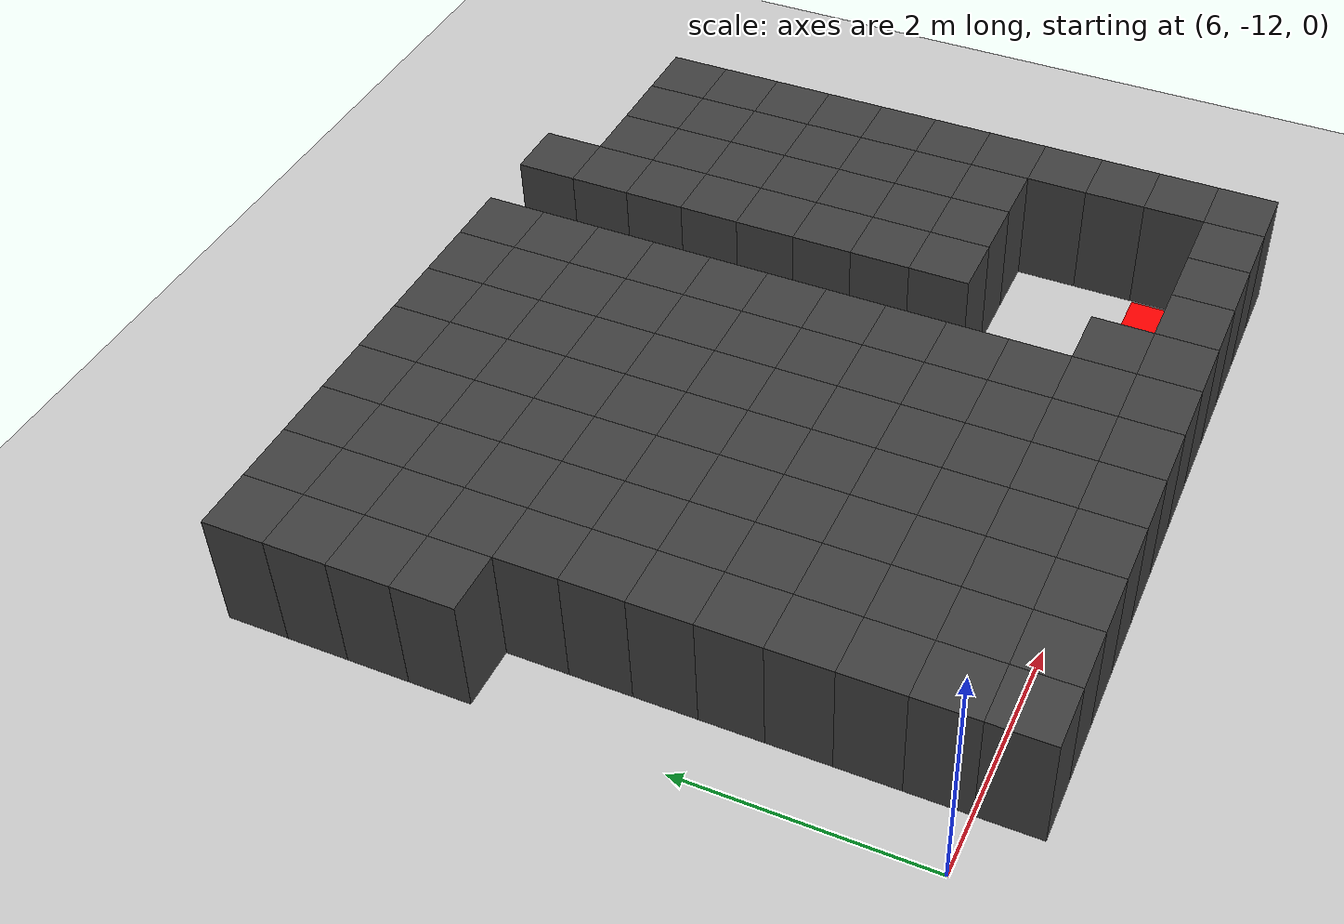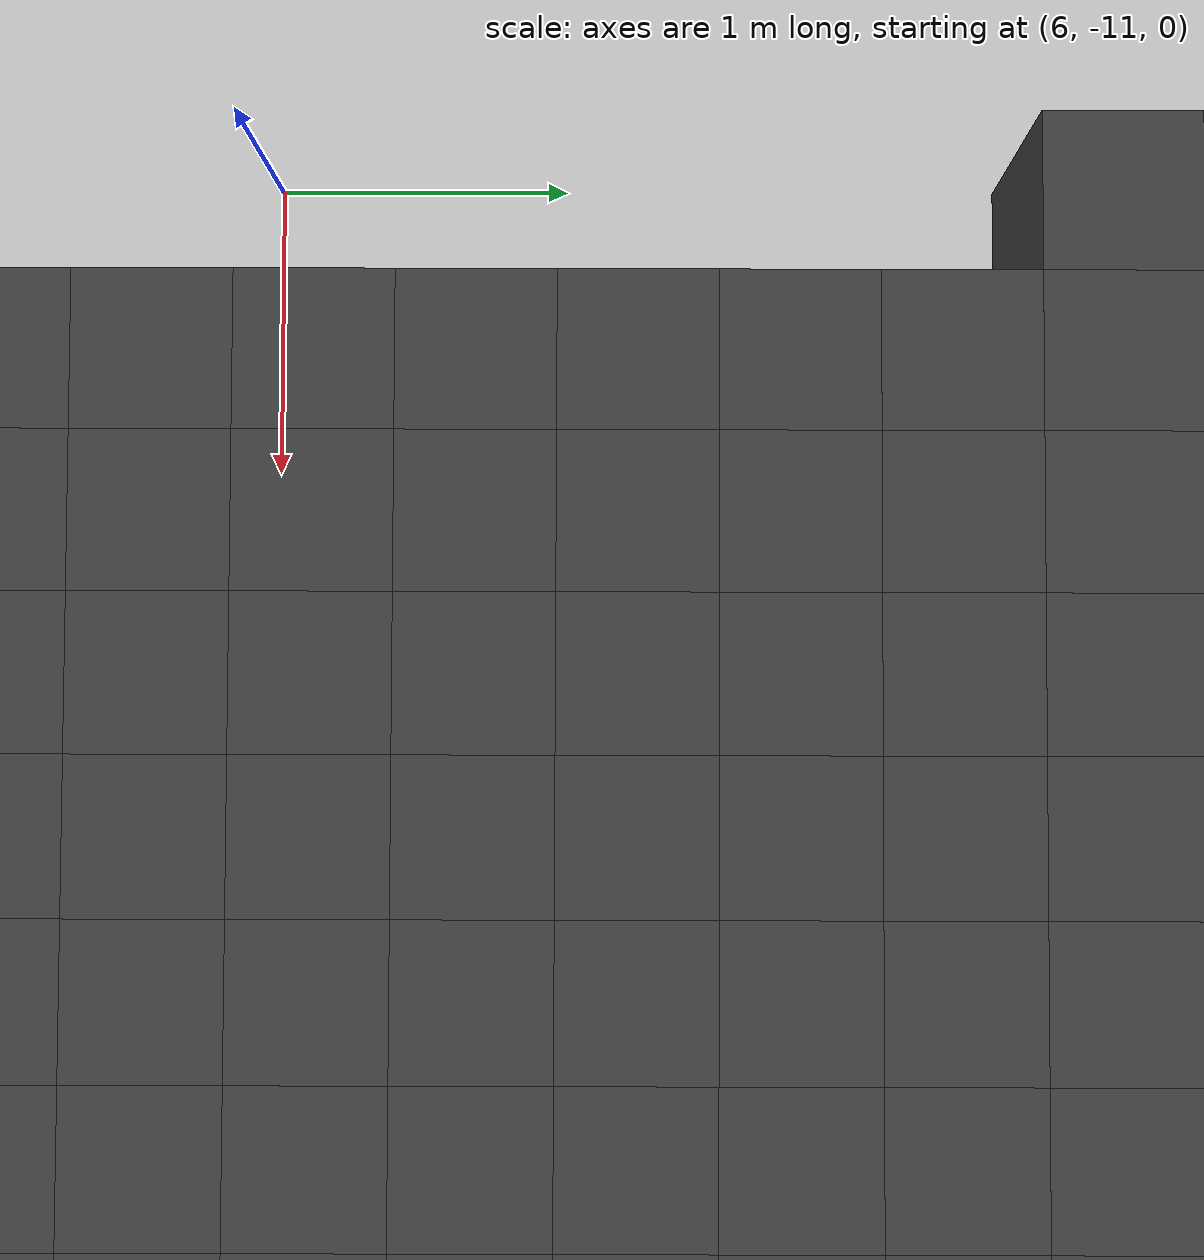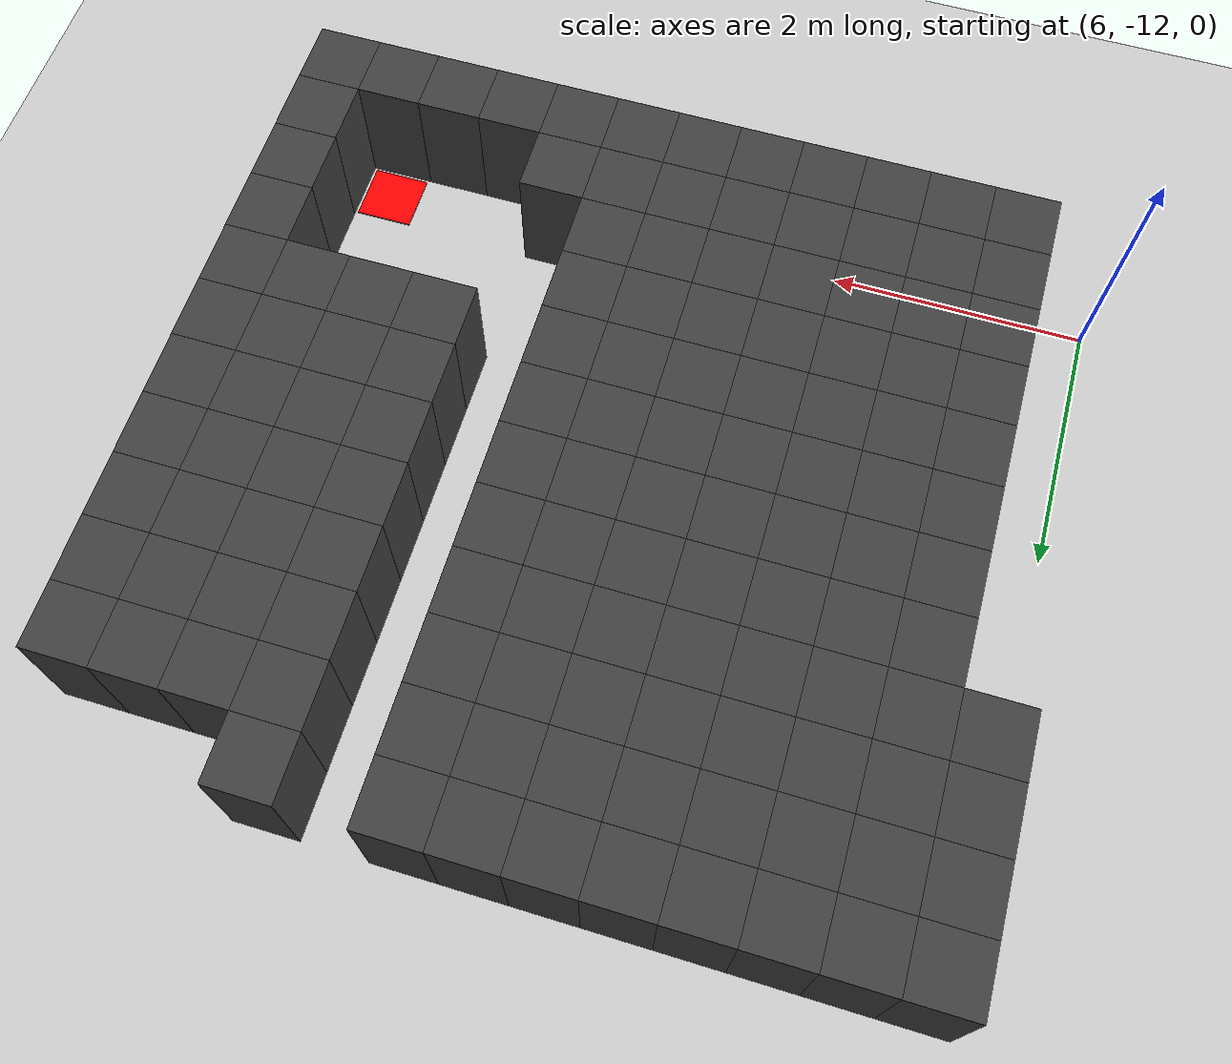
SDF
<sdf version="1.7">
 <world name="map_12356">
  <model name="ground_plane">
   <static>true</static>
   <link name="link">
    <collision name="collision">
     <geometry><plane><normal>0 0 1</normal><size>200 200</size></plane></geometry>
    </collision>
    <visual name="visual">
     <geometry><plane><normal>0 0 1</normal><size>200 200</size></plane></geometry>
     <material><ambient>0.8 0.8 0.8 1</ambient><diffuse>0.8 0.8 0.8 1</diffuse></material>
    </visual>
   </link>
  </model>
  <model name="maze_environment">
   <static>true</static>
   <link name="wall_1510">
    <pose>6.250 -6.750 0.500 0 0 0</pose>
    <collision name="col"><geometry><box><size>0.5 0.5 1.0</size></box></geometry></collision>
    <visual name="vis">
     <geometry><box><size>0.5 0.5 1.0</size></box></geometry>
     <material><ambient>0.15 0.15 0.15 1</ambient><diffuse>0.25 0.25 0.25 1</diffuse></material>
    </visual>
   </link>
   <link name="wall_1511">
    <pose>6.750 -6.750 0.500 0 0 0</pose>
    <collision name="col"><geometry><box><size>0.5 0.5 1.0</size></box></geometry></collision>
    <visual name="vis">
     <geometry><box><size>0.5 0.5 1.0</size></box></geometry>
     <material><ambient>0.15 0.15 0.15 1</ambient><diffuse>0.25 0.25 0.25 1</diffuse></material>
    </visual>
   </link>
   <link name="wall_1512">
    <pose>7.250 -6.750 0.500 0 0 0</pose>
    <collision name="col"><geometry><box><size>0.5 0.5 1.0</size></box></geometry></collision>
    <visual name="vis">
     <geometry><box><size>0.5 0.5 1.0</size></box></geometry>
     <material><ambient>0.15 0.15 0.15 1</ambient><diffuse>0.25 0.25 0.25 1</diffuse></material>
    </visual>
   </link>
   <link name="wall_1513">
    <pose>7.750 -6.750 0.500 0 0 0</pose>
    <collision name="col"><geometry><box><size>0.5 0.5 1.0</size></box></geometry></collision>
    <visual name="vis">
     <geometry><box><size>0.5 0.5 1.0</size></box></geometry>
     <material><ambient>0.15 0.15 0.15 1</ambient><diffuse>0.25 0.25 0.25 1</diffuse></material>
    </visual>
   </link>
   <link name="wall_1514">
    <pose>8.250 -6.750 0.500 0 0 0</pose>
    <collision name="col"><geometry><box><size>0.5 0.5 1.0</size></box></geometry></collision>
    <visual name="vis">
     <geometry><box><size>0.5 0.5 1.0</size></box></geometry>
     <material><ambient>0.15 0.15 0.15 1</ambient><diffuse>0.25 0.25 0.25 1</diffuse></material>
    </visual>
   </link>
   <link name="wall_1515">
    <pose>8.750 -6.750 0.500 0 0 0</pose>
    <collision name="col"><geometry><box><size>0.5 0.5 1.0</size></box></geometry></collision>
    <visual name="vis">
     <geometry><box><size>0.5 0.5 1.0</size></box></geometry>
     <material><ambient>0.15 0.15 0.15 1</ambient><diffuse>0.25 0.25 0.25 1</diffuse></material>
    </visual>
   </link>
   <link name="wall_1516">
    <pose>9.250 -6.750 0.500 0 0 0</pose>
    <collision name="col"><geometry><box><size>0.5 0.5 1.0</size></box></geometry></collision>
    <visual name="vis">
     <geometry><box><size>0.5 0.5 1.0</size></box></geometry>
     <material><ambient>0.15 0.15 0.15 1</ambient><diffuse>0.25 0.25 0.25 1</diffuse></material>
    </visual>
   </link>
   <link name="wall_1517">
    <pose>9.750 -6.750 0.500 0 0 0</pose>
    <collision name="col"><geometry><box><size>0.5 0.5 1.0</size></box></geometry></collision>
    <visual name="vis">
     <geometry><box><size>0.5 0.5 1.0</size></box></geometry>
     <material><ambient>0.15 0.15 0.15 1</ambient><diffuse>0.25 0.25 0.25 1</diffuse></material>
    </visual>
   </link>
   <link name="wall_1518">
    <pose>10.750 -6.750 0.500 0 0 0</pose>
    <collision name="col"><geometry><box><size>0.5 0.5 1.0</size></box></geometry></collision>
    <visual name="vis">
     <geometry><box><size>0.5 0.5 1.0</size></box></geometry>
     <material><ambient>0.15 0.15 0.15 1</ambient><diffuse>0.25 0.25 0.25 1</diffuse></material>
    </visual>
   </link>
   <link name="wall_1551">
    <pose>6.250 -7.250 0.500 0 0 0</pose>
    <collision name="col"><geometry><box><size>0.5 0.5 1.0</size></box></geometry></collision>
    <visual name="vis">
     <geometry><box><size>0.5 0.5 1.0</size></box></geometry>
     <material><ambient>0.15 0.15 0.15 1</ambient><diffuse>0.25 0.25 0.25 1</diffuse></material>
    </visual>
   </link>
   <link name="wall_1552">
    <pose>6.750 -7.250 0.500 0 0 0</pose>
    <collision name="col"><geometry><box><size>0.5 0.5 1.0</size></box></geometry></collision>
    <visual name="vis">
     <geometry><box><size>0.5 0.5 1.0</size></box></geometry>
     <material><ambient>0.15 0.15 0.15 1</ambient><diffuse>0.25 0.25 0.25 1</diffuse></material>
    </visual>
   </link>
   <link name="wall_1553">
    <pose>7.250 -7.250 0.500 0 0 0</pose>
    <collision name="col"><geometry><box><size>0.5 0.5 1.0</size></box></geometry></collision>
    <visual name="vis">
     <geometry><box><size>0.5 0.5 1.0</size></box></geometry>
     <material><ambient>0.15 0.15 0.15 1</ambient><diffuse>0.25 0.25 0.25 1</diffuse></material>
    </visual>
   </link>
   <link name="wall_1554">
    <pose>7.750 -7.250 0.500 0 0 0</pose>
    <collision name="col"><geometry><box><size>0.5 0.5 1.0</size></box></geometry></collision>
    <visual name="vis">
     <geometry><box><size>0.5 0.5 1.0</size></box></geometry>
     <material><ambient>0.15 0.15 0.15 1</ambient><diffuse>0.25 0.25 0.25 1</diffuse></material>
    </visual>
   </link>
   <link name="wall_1555">
    <pose>8.250 -7.250 0.500 0 0 0</pose>
    <collision name="col"><geometry><box><size>0.5 0.5 1.0</size></box></geometry></collision>
    <visual name="vis">
     <geometry><box><size>0.5 0.5 1.0</size></box></geometry>
     <material><ambient>0.15 0.15 0.15 1</ambient><diffuse>0.25 0.25 0.25 1</diffuse></material>
    </visual>
   </link>
   <link name="wall_1556">
    <pose>8.750 -7.250 0.500 0 0 0</pose>
    <collision name="col"><geometry><box><size>0.5 0.5 1.0</size></box></geometry></collision>
    <visual name="vis">
     <geometry><box><size>0.5 0.5 1.0</size></box></geometry>
     <material><ambient>0.15 0.15 0.15 1</ambient><diffuse>0.25 0.25 0.25 1</diffuse></material>
    </visual>
   </link>
   <link name="wall_1557">
    <pose>9.250 -7.250 0.500 0 0 0</pose>
    <collision name="col"><geometry><box><size>0.5 0.5 1.0</size></box></geometry></collision>
    <visual name="vis">
     <geometry><box><size>0.5 0.5 1.0</size></box></geometry>
     <material><ambient>0.15 0.15 0.15 1</ambient><diffuse>0.25 0.25 0.25 1</diffuse></material>
    </visual>
   </link>
   <link name="wall_1558">
    <pose>9.750 -7.250 0.500 0 0 0</pose>
    <collision name="col"><geometry><box><size>0.5 0.5 1.0</size></box></geometry></collision>
    <visual name="vis">
     <geometry><box><size>0.5 0.5 1.0</size></box></geometry>
     <material><ambient>0.15 0.15 0.15 1</ambient><diffuse>0.25 0.25 0.25 1</diffuse></material>
    </visual>
   </link>
   <link name="wall_1559">
    <pose>10.750 -7.250 0.500 0 0 0</pose>
    <collision name="col"><geometry><box><size>0.5 0.5 1.0</size></box></geometry></collision>
    <visual name="vis">
     <geometry><box><size>0.5 0.5 1.0</size></box></geometry>
     <material><ambient>0.15 0.15 0.15 1</ambient><diffuse>0.25 0.25 0.25 1</diffuse></material>
    </visual>
   </link>
   <link name="wall_1560">
    <pose>11.250 -7.250 0.500 0 0 0</pose>
    <collision name="col"><geometry><box><size>0.5 0.5 1.0</size></box></geometry></collision>
    <visual name="vis">
     <geometry><box><size>0.5 0.5 1.0</size></box></geometry>
     <material><ambient>0.15 0.15 0.15 1</ambient><diffuse>0.25 0.25 0.25 1</diffuse></material>
    </visual>
   </link>
   <link name="wall_1561">
    <pose>11.750 -7.250 0.500 0 0 0</pose>
    <collision name="col"><geometry><box><size>0.5 0.5 1.0</size></box></geometry></collision>
    <visual name="vis">
     <geometry><box><size>0.5 0.5 1.0</size></box></geometry>
     <material><ambient>0.15 0.15 0.15 1</ambient><diffuse>0.25 0.25 0.25 1</diffuse></material>
    </visual>
   </link>
   <link name="wall_1562">
    <pose>12.250 -7.250 0.500 0 0 0</pose>
    <collision name="col"><geometry><box><size>0.5 0.5 1.0</size></box></geometry></collision>
    <visual name="vis">
     <geometry><box><size>0.5 0.5 1.0</size></box></geometry>
     <material><ambient>0.15 0.15 0.15 1</ambient><diffuse>0.25 0.25 0.25 1</diffuse></material>
    </visual>
   </link>
   <link name="wall_1596">
    <pose>6.250 -7.750 0.500 0 0 0</pose>
    <collision name="col"><geometry><box><size>0.5 0.5 1.0</size></box></geometry></collision>
    <visual name="vis">
     <geometry><box><size>0.5 0.5 1.0</size></box></geometry>
     <material><ambient>0.15 0.15 0.15 1</ambient><diffuse>0.25 0.25 0.25 1</diffuse></material>
    </visual>
   </link>
   <link name="wall_1597">
    <pose>6.750 -7.750 0.500 0 0 0</pose>
    <collision name="col"><geometry><box><size>0.5 0.5 1.0</size></box></geometry></collision>
    <visual name="vis">
     <geometry><box><size>0.5 0.5 1.0</size></box></geometry>
     <material><ambient>0.15 0.15 0.15 1</ambient><diffuse>0.25 0.25 0.25 1</diffuse></material>
    </visual>
   </link>
   <link name="wall_1598">
    <pose>7.250 -7.750 0.500 0 0 0</pose>
    <collision name="col"><geometry><box><size>0.5 0.5 1.0</size></box></geometry></collision>
    <visual name="vis">
     <geometry><box><size>0.5 0.5 1.0</size></box></geometry>
     <material><ambient>0.15 0.15 0.15 1</ambient><diffuse>0.25 0.25 0.25 1</diffuse></material>
    </visual>
   </link>
   <link name="wall_1599">
    <pose>7.750 -7.750 0.500 0 0 0</pose>
    <collision name="col"><geometry><box><size>0.5 0.5 1.0</size></box></geometry></collision>
    <visual name="vis">
     <geometry><box><size>0.5 0.5 1.0</size></box></geometry>
     <material><ambient>0.15 0.15 0.15 1</ambient><diffuse>0.25 0.25 0.25 1</diffuse></material>
    </visual>
   </link>
   <link name="wall_1600">
    <pose>8.250 -7.750 0.500 0 0 0</pose>
    <collision name="col"><geometry><box><size>0.5 0.5 1.0</size></box></geometry></collision>
    <visual name="vis">
     <geometry><box><size>0.5 0.5 1.0</size></box></geometry>
     <material><ambient>0.15 0.15 0.15 1</ambient><diffuse>0.25 0.25 0.25 1</diffuse></material>
    </visual>
   </link>
   <link name="wall_1601">
    <pose>8.750 -7.750 0.500 0 0 0</pose>
    <collision name="col"><geometry><box><size>0.5 0.5 1.0</size></box></geometry></collision>
    <visual name="vis">
     <geometry><box><size>0.5 0.5 1.0</size></box></geometry>
     <material><ambient>0.15 0.15 0.15 1</ambient><diffuse>0.25 0.25 0.25 1</diffuse></material>
    </visual>
   </link>
   <link name="wall_1602">
    <pose>9.250 -7.750 0.500 0 0 0</pose>
    <collision name="col"><geometry><box><size>0.5 0.5 1.0</size></box></geometry></collision>
    <visual name="vis">
     <geometry><box><size>0.5 0.5 1.0</size></box></geometry>
     <material><ambient>0.15 0.15 0.15 1</ambient><diffuse>0.25 0.25 0.25 1</diffuse></material>
    </visual>
   </link>
   <link name="wall_1603">
    <pose>9.750 -7.750 0.500 0 0 0</pose>
    <collision name="col"><geometry><box><size>0.5 0.5 1.0</size></box></geometry></collision>
    <visual name="vis">
     <geometry><box><size>0.5 0.5 1.0</size></box></geometry>
     <material><ambient>0.15 0.15 0.15 1</ambient><diffuse>0.25 0.25 0.25 1</diffuse></material>
    </visual>
   </link>
   <link name="wall_1604">
    <pose>10.750 -7.750 0.500 0 0 0</pose>
    <collision name="col"><geometry><box><size>0.5 0.5 1.0</size></box></geometry></collision>
    <visual name="vis">
     <geometry><box><size>0.5 0.5 1.0</size></box></geometry>
     <material><ambient>0.15 0.15 0.15 1</ambient><diffuse>0.25 0.25 0.25 1</diffuse></material>
    </visual>
   </link>
   <link name="wall_1605">
    <pose>11.250 -7.750 0.500 0 0 0</pose>
    <collision name="col"><geometry><box><size>0.5 0.5 1.0</size></box></geometry></collision>
    <visual name="vis">
     <geometry><box><size>0.5 0.5 1.0</size></box></geometry>
     <material><ambient>0.15 0.15 0.15 1</ambient><diffuse>0.25 0.25 0.25 1</diffuse></material>
    </visual>
   </link>
   <link name="wall_1606">
    <pose>11.750 -7.750 0.500 0 0 0</pose>
    <collision name="col"><geometry><box><size>0.5 0.5 1.0</size></box></geometry></collision>
    <visual name="vis">
     <geometry><box><size>0.5 0.5 1.0</size></box></geometry>
     <material><ambient>0.15 0.15 0.15 1</ambient><diffuse>0.25 0.25 0.25 1</diffuse></material>
    </visual>
   </link>
   <link name="wall_1607">
    <pose>12.250 -7.750 0.500 0 0 0</pose>
    <collision name="col"><geometry><box><size>0.5 0.5 1.0</size></box></geometry></collision>
    <visual name="vis">
     <geometry><box><size>0.5 0.5 1.0</size></box></geometry>
     <material><ambient>0.15 0.15 0.15 1</ambient><diffuse>0.25 0.25 0.25 1</diffuse></material>
    </visual>
   </link>
   <link name="wall_1645">
    <pose>6.250 -8.250 0.500 0 0 0</pose>
    <collision name="col"><geometry><box><size>0.5 0.5 1.0</size></box></geometry></collision>
    <visual name="vis">
     <geometry><box><size>0.5 0.5 1.0</size></box></geometry>
     <material><ambient>0.15 0.15 0.15 1</ambient><diffuse>0.25 0.25 0.25 1</diffuse></material>
    </visual>
   </link>
   <link name="wall_1646">
    <pose>6.750 -8.250 0.500 0 0 0</pose>
    <collision name="col"><geometry><box><size>0.5 0.5 1.0</size></box></geometry></collision>
    <visual name="vis">
     <geometry><box><size>0.5 0.5 1.0</size></box></geometry>
     <material><ambient>0.15 0.15 0.15 1</ambient><diffuse>0.25 0.25 0.25 1</diffuse></material>
    </visual>
   </link>
   <link name="wall_1647">
    <pose>7.250 -8.250 0.500 0 0 0</pose>
    <collision name="col"><geometry><box><size>0.5 0.5 1.0</size></box></geometry></collision>
    <visual name="vis">
     <geometry><box><size>0.5 0.5 1.0</size></box></geometry>
     <material><ambient>0.15 0.15 0.15 1</ambient><diffuse>0.25 0.25 0.25 1</diffuse></material>
    </visual>
   </link>
   <link name="wall_1648">
    <pose>7.750 -8.250 0.500 0 0 0</pose>
    <collision name="col"><geometry><box><size>0.5 0.5 1.0</size></box></geometry></collision>
    <visual name="vis">
     <geometry><box><size>0.5 0.5 1.0</size></box></geometry>
     <material><ambient>0.15 0.15 0.15 1</ambient><diffuse>0.25 0.25 0.25 1</diffuse></material>
    </visual>
   </link>
   <link name="wall_1649">
    <pose>8.250 -8.250 0.500 0 0 0</pose>
    <collision name="col"><geometry><box><size>0.5 0.5 1.0</size></box></geometry></collision>
    <visual name="vis">
     <geometry><box><size>0.5 0.5 1.0</size></box></geometry>
     <material><ambient>0.15 0.15 0.15 1</ambient><diffuse>0.25 0.25 0.25 1</diffuse></material>
    </visual>
   </link>
   <link name="wall_1650">
    <pose>8.750 -8.250 0.500 0 0 0</pose>
    <collision name="col"><geometry><box><size>0.5 0.5 1.0</size></box></geometry></collision>
    <visual name="vis">
     <geometry><box><size>0.5 0.5 1.0</size></box></geometry>
     <material><ambient>0.15 0.15 0.15 1</ambient><diffuse>0.25 0.25 0.25 1</diffuse></material>
    </visual>
   </link>
   <link name="wall_1651">
    <pose>9.250 -8.250 0.500 0 0 0</pose>
    <collision name="col"><geometry><box><size>0.5 0.5 1.0</size></box></geometry></collision>
    <visual name="vis">
     <geometry><box><size>0.5 0.5 1.0</size></box></geometry>
     <material><ambient>0.15 0.15 0.15 1</ambient><diffuse>0.25 0.25 0.25 1</diffuse></material>
    </visual>
   </link>
   <link name="wall_1652">
    <pose>9.750 -8.250 0.500 0 0 0</pose>
    <collision name="col"><geometry><box><size>0.5 0.5 1.0</size></box></geometry></collision>
    <visual name="vis">
     <geometry><box><size>0.5 0.5 1.0</size></box></geometry>
     <material><ambient>0.15 0.15 0.15 1</ambient><diffuse>0.25 0.25 0.25 1</diffuse></material>
    </visual>
   </link>
   <link name="wall_1653">
    <pose>10.750 -8.250 0.500 0 0 0</pose>
    <collision name="col"><geometry><box><size>0.5 0.5 1.0</size></box></geometry></collision>
    <visual name="vis">
     <geometry><box><size>0.5 0.5 1.0</size></box></geometry>
     <material><ambient>0.15 0.15 0.15 1</ambient><diffuse>0.25 0.25 0.25 1</diffuse></material>
    </visual>
   </link>
   <link name="wall_1654">
    <pose>11.250 -8.250 0.500 0 0 0</pose>
    <collision name="col"><geometry><box><size>0.5 0.5 1.0</size></box></geometry></collision>
    <visual name="vis">
     <geometry><box><size>0.5 0.5 1.0</size></box></geometry>
     <material><ambient>0.15 0.15 0.15 1</ambient><diffuse>0.25 0.25 0.25 1</diffuse></material>
    </visual>
   </link>
   <link name="wall_1655">
    <pose>11.750 -8.250 0.500 0 0 0</pose>
    <collision name="col"><geometry><box><size>0.5 0.5 1.0</size></box></geometry></collision>
    <visual name="vis">
     <geometry><box><size>0.5 0.5 1.0</size></box></geometry>
     <material><ambient>0.15 0.15 0.15 1</ambient><diffuse>0.25 0.25 0.25 1</diffuse></material>
    </visual>
   </link>
   <link name="wall_1656">
    <pose>12.250 -8.250 0.500 0 0 0</pose>
    <collision name="col"><geometry><box><size>0.5 0.5 1.0</size></box></geometry></collision>
    <visual name="vis">
     <geometry><box><size>0.5 0.5 1.0</size></box></geometry>
     <material><ambient>0.15 0.15 0.15 1</ambient><diffuse>0.25 0.25 0.25 1</diffuse></material>
    </visual>
   </link>
   <link name="wall_1695">
    <pose>6.750 -8.750 0.500 0 0 0</pose>
    <collision name="col"><geometry><box><size>0.5 0.5 1.0</size></box></geometry></collision>
    <visual name="vis">
     <geometry><box><size>0.5 0.5 1.0</size></box></geometry>
     <material><ambient>0.15 0.15 0.15 1</ambient><diffuse>0.25 0.25 0.25 1</diffuse></material>
    </visual>
   </link>
   <link name="wall_1696">
    <pose>7.250 -8.750 0.500 0 0 0</pose>
    <collision name="col"><geometry><box><size>0.5 0.5 1.0</size></box></geometry></collision>
    <visual name="vis">
     <geometry><box><size>0.5 0.5 1.0</size></box></geometry>
     <material><ambient>0.15 0.15 0.15 1</ambient><diffuse>0.25 0.25 0.25 1</diffuse></material>
    </visual>
   </link>
   <link name="wall_1697">
    <pose>7.750 -8.750 0.500 0 0 0</pose>
    <collision name="col"><geometry><box><size>0.5 0.5 1.0</size></box></geometry></collision>
    <visual name="vis">
     <geometry><box><size>0.5 0.5 1.0</size></box></geometry>
     <material><ambient>0.15 0.15 0.15 1</ambient><diffuse>0.25 0.25 0.25 1</diffuse></material>
    </visual>
   </link>
   <link name="wall_1698">
    <pose>8.250 -8.750 0.500 0 0 0</pose>
    <collision name="col"><geometry><box><size>0.5 0.5 1.0</size></box></geometry></collision>
    <visual name="vis">
     <geometry><box><size>0.5 0.5 1.0</size></box></geometry>
     <material><ambient>0.15 0.15 0.15 1</ambient><diffuse>0.25 0.25 0.25 1</diffuse></material>
    </visual>
   </link>
   <link name="wall_1699">
    <pose>8.750 -8.750 0.500 0 0 0</pose>
    <collision name="col"><geometry><box><size>0.5 0.5 1.0</size></box></geometry></collision>
    <visual name="vis">
     <geometry><box><size>0.5 0.5 1.0</size></box></geometry>
     <material><ambient>0.15 0.15 0.15 1</ambient><diffuse>0.25 0.25 0.25 1</diffuse></material>
    </visual>
   </link>
   <link name="wall_1700">
    <pose>9.250 -8.750 0.500 0 0 0</pose>
    <collision name="col"><geometry><box><size>0.5 0.5 1.0</size></box></geometry></collision>
    <visual name="vis">
     <geometry><box><size>0.5 0.5 1.0</size></box></geometry>
     <material><ambient>0.15 0.15 0.15 1</ambient><diffuse>0.25 0.25 0.25 1</diffuse></material>
    </visual>
   </link>
   <link name="wall_1701">
    <pose>9.750 -8.750 0.500 0 0 0</pose>
    <collision name="col"><geometry><box><size>0.5 0.5 1.0</size></box></geometry></collision>
    <visual name="vis">
     <geometry><box><size>0.5 0.5 1.0</size></box></geometry>
     <material><ambient>0.15 0.15 0.15 1</ambient><diffuse>0.25 0.25 0.25 1</diffuse></material>
    </visual>
   </link>
   <link name="wall_1702">
    <pose>10.750 -8.750 0.500 0 0 0</pose>
    <collision name="col"><geometry><box><size>0.5 0.5 1.0</size></box></geometry></collision>
    <visual name="vis">
     <geometry><box><size>0.5 0.5 1.0</size></box></geometry>
     <material><ambient>0.15 0.15 0.15 1</ambient><diffuse>0.25 0.25 0.25 1</diffuse></material>
    </visual>
   </link>
   <link name="wall_1703">
    <pose>11.250 -8.750 0.500 0 0 0</pose>
    <collision name="col"><geometry><box><size>0.5 0.5 1.0</size></box></geometry></collision>
    <visual name="vis">
     <geometry><box><size>0.5 0.5 1.0</size></box></geometry>
     <material><ambient>0.15 0.15 0.15 1</ambient><diffuse>0.25 0.25 0.25 1</diffuse></material>
    </visual>
   </link>
   <link name="wall_1704">
    <pose>11.750 -8.750 0.500 0 0 0</pose>
    <collision name="col"><geometry><box><size>0.5 0.5 1.0</size></box></geometry></collision>
    <visual name="vis">
     <geometry><box><size>0.5 0.5 1.0</size></box></geometry>
     <material><ambient>0.15 0.15 0.15 1</ambient><diffuse>0.25 0.25 0.25 1</diffuse></material>
    </visual>
   </link>
   <link name="wall_1705">
    <pose>12.250 -8.750 0.500 0 0 0</pose>
    <collision name="col"><geometry><box><size>0.5 0.5 1.0</size></box></geometry></collision>
    <visual name="vis">
     <geometry><box><size>0.5 0.5 1.0</size></box></geometry>
     <material><ambient>0.15 0.15 0.15 1</ambient><diffuse>0.25 0.25 0.25 1</diffuse></material>
    </visual>
   </link>
   <link name="wall_1744">
    <pose>6.750 -9.250 0.500 0 0 0</pose>
    <collision name="col"><geometry><box><size>0.5 0.5 1.0</size></box></geometry></collision>
    <visual name="vis">
     <geometry><box><size>0.5 0.5 1.0</size></box></geometry>
     <material><ambient>0.15 0.15 0.15 1</ambient><diffuse>0.25 0.25 0.25 1</diffuse></material>
    </visual>
   </link>
   <link name="wall_1745">
    <pose>7.250 -9.250 0.500 0 0 0</pose>
    <collision name="col"><geometry><box><size>0.5 0.5 1.0</size></box></geometry></collision>
    <visual name="vis">
     <geometry><box><size>0.5 0.5 1.0</size></box></geometry>
     <material><ambient>0.15 0.15 0.15 1</ambient><diffuse>0.25 0.25 0.25 1</diffuse></material>
    </visual>
   </link>
   <link name="wall_1746">
    <pose>7.750 -9.250 0.500 0 0 0</pose>
    <collision name="col"><geometry><box><size>0.5 0.5 1.0</size></box></geometry></collision>
    <visual name="vis">
     <geometry><box><size>0.5 0.5 1.0</size></box></geometry>
     <material><ambient>0.15 0.15 0.15 1</ambient><diffuse>0.25 0.25 0.25 1</diffuse></material>
    </visual>
   </link>
   <link name="wall_1747">
    <pose>8.250 -9.250 0.500 0 0 0</pose>
    <collision name="col"><geometry><box><size>0.5 0.5 1.0</size></box></geometry></collision>
    <visual name="vis">
     <geometry><box><size>0.5 0.5 1.0</size></box></geometry>
     <material><ambient>0.15 0.15 0.15 1</ambient><diffuse>0.25 0.25 0.25 1</diffuse></material>
    </visual>
   </link>
   <link name="wall_1748">
    <pose>8.750 -9.250 0.500 0 0 0</pose>
    <collision name="col"><geometry><box><size>0.5 0.5 1.0</size></box></geometry></collision>
    <visual name="vis">
     <geometry><box><size>0.5 0.5 1.0</size></box></geometry>
     <material><ambient>0.15 0.15 0.15 1</ambient><diffuse>0.25 0.25 0.25 1</diffuse></material>
    </visual>
   </link>
   <link name="wall_1749">
    <pose>9.250 -9.250 0.500 0 0 0</pose>
    <collision name="col"><geometry><box><size>0.5 0.5 1.0</size></box></geometry></collision>
    <visual name="vis">
     <geometry><box><size>0.5 0.5 1.0</size></box></geometry>
     <material><ambient>0.15 0.15 0.15 1</ambient><diffuse>0.25 0.25 0.25 1</diffuse></material>
    </visual>
   </link>
   <link name="wall_1750">
    <pose>9.750 -9.250 0.500 0 0 0</pose>
    <collision name="col"><geometry><box><size>0.5 0.5 1.0</size></box></geometry></collision>
    <visual name="vis">
     <geometry><box><size>0.5 0.5 1.0</size></box></geometry>
     <material><ambient>0.15 0.15 0.15 1</ambient><diffuse>0.25 0.25 0.25 1</diffuse></material>
    </visual>
   </link>
   <link name="wall_1751">
    <pose>10.750 -9.250 0.500 0 0 0</pose>
    <collision name="col"><geometry><box><size>0.5 0.5 1.0</size></box></geometry></collision>
    <visual name="vis">
     <geometry><box><size>0.5 0.5 1.0</size></box></geometry>
     <material><ambient>0.15 0.15 0.15 1</ambient><diffuse>0.25 0.25 0.25 1</diffuse></material>
    </visual>
   </link>
   <link name="wall_1752">
    <pose>11.250 -9.250 0.500 0 0 0</pose>
    <collision name="col"><geometry><box><size>0.5 0.5 1.0</size></box></geometry></collision>
    <visual name="vis">
     <geometry><box><size>0.5 0.5 1.0</size></box></geometry>
     <material><ambient>0.15 0.15 0.15 1</ambient><diffuse>0.25 0.25 0.25 1</diffuse></material>
    </visual>
   </link>
   <link name="wall_1753">
    <pose>11.750 -9.250 0.500 0 0 0</pose>
    <collision name="col"><geometry><box><size>0.5 0.5 1.0</size></box></geometry></collision>
    <visual name="vis">
     <geometry><box><size>0.5 0.5 1.0</size></box></geometry>
     <material><ambient>0.15 0.15 0.15 1</ambient><diffuse>0.25 0.25 0.25 1</diffuse></material>
    </visual>
   </link>
   <link name="wall_1754">
    <pose>12.250 -9.250 0.500 0 0 0</pose>
    <collision name="col"><geometry><box><size>0.5 0.5 1.0</size></box></geometry></collision>
    <visual name="vis">
     <geometry><box><size>0.5 0.5 1.0</size></box></geometry>
     <material><ambient>0.15 0.15 0.15 1</ambient><diffuse>0.25 0.25 0.25 1</diffuse></material>
    </visual>
   </link>
   <link name="wall_1793">
    <pose>6.750 -9.750 0.500 0 0 0</pose>
    <collision name="col"><geometry><box><size>0.5 0.5 1.0</size></box></geometry></collision>
    <visual name="vis">
     <geometry><box><size>0.5 0.5 1.0</size></box></geometry>
     <material><ambient>0.15 0.15 0.15 1</ambient><diffuse>0.25 0.25 0.25 1</diffuse></material>
    </visual>
   </link>
   <link name="wall_1794">
    <pose>7.250 -9.750 0.500 0 0 0</pose>
    <collision name="col"><geometry><box><size>0.5 0.5 1.0</size></box></geometry></collision>
    <visual name="vis">
     <geometry><box><size>0.5 0.5 1.0</size></box></geometry>
     <material><ambient>0.15 0.15 0.15 1</ambient><diffuse>0.25 0.25 0.25 1</diffuse></material>
    </visual>
   </link>
   <link name="wall_1795">
    <pose>7.750 -9.750 0.500 0 0 0</pose>
    <collision name="col"><geometry><box><size>0.5 0.5 1.0</size></box></geometry></collision>
    <visual name="vis">
     <geometry><box><size>0.5 0.5 1.0</size></box></geometry>
     <material><ambient>0.15 0.15 0.15 1</ambient><diffuse>0.25 0.25 0.25 1</diffuse></material>
    </visual>
   </link>
   <link name="wall_1796">
    <pose>8.250 -9.750 0.500 0 0 0</pose>
    <collision name="col"><geometry><box><size>0.5 0.5 1.0</size></box></geometry></collision>
    <visual name="vis">
     <geometry><box><size>0.5 0.5 1.0</size></box></geometry>
     <material><ambient>0.15 0.15 0.15 1</ambient><diffuse>0.25 0.25 0.25 1</diffuse></material>
    </visual>
   </link>
   <link name="wall_1797">
    <pose>8.750 -9.750 0.500 0 0 0</pose>
    <collision name="col"><geometry><box><size>0.5 0.5 1.0</size></box></geometry></collision>
    <visual name="vis">
     <geometry><box><size>0.5 0.5 1.0</size></box></geometry>
     <material><ambient>0.15 0.15 0.15 1</ambient><diffuse>0.25 0.25 0.25 1</diffuse></material>
    </visual>
   </link>
   <link name="wall_1798">
    <pose>9.250 -9.750 0.500 0 0 0</pose>
    <collision name="col"><geometry><box><size>0.5 0.5 1.0</size></box></geometry></collision>
    <visual name="vis">
     <geometry><box><size>0.5 0.5 1.0</size></box></geometry>
     <material><ambient>0.15 0.15 0.15 1</ambient><diffuse>0.25 0.25 0.25 1</diffuse></material>
    </visual>
   </link>
   <link name="wall_1799">
    <pose>9.750 -9.750 0.500 0 0 0</pose>
    <collision name="col"><geometry><box><size>0.5 0.5 1.0</size></box></geometry></collision>
    <visual name="vis">
     <geometry><box><size>0.5 0.5 1.0</size></box></geometry>
     <material><ambient>0.15 0.15 0.15 1</ambient><diffuse>0.25 0.25 0.25 1</diffuse></material>
    </visual>
   </link>
   <link name="wall_1800">
    <pose>10.750 -9.750 0.500 0 0 0</pose>
    <collision name="col"><geometry><box><size>0.5 0.5 1.0</size></box></geometry></collision>
    <visual name="vis">
     <geometry><box><size>0.5 0.5 1.0</size></box></geometry>
     <material><ambient>0.15 0.15 0.15 1</ambient><diffuse>0.25 0.25 0.25 1</diffuse></material>
    </visual>
   </link>
   <link name="wall_1801">
    <pose>11.250 -9.750 0.500 0 0 0</pose>
    <collision name="col"><geometry><box><size>0.5 0.5 1.0</size></box></geometry></collision>
    <visual name="vis">
     <geometry><box><size>0.5 0.5 1.0</size></box></geometry>
     <material><ambient>0.15 0.15 0.15 1</ambient><diffuse>0.25 0.25 0.25 1</diffuse></material>
    </visual>
   </link>
   <link name="wall_1802">
    <pose>11.750 -9.750 0.500 0 0 0</pose>
    <collision name="col"><geometry><box><size>0.5 0.5 1.0</size></box></geometry></collision>
    <visual name="vis">
     <geometry><box><size>0.5 0.5 1.0</size></box></geometry>
     <material><ambient>0.15 0.15 0.15 1</ambient><diffuse>0.25 0.25 0.25 1</diffuse></material>
    </visual>
   </link>
   <link name="wall_1803">
    <pose>12.250 -9.750 0.500 0 0 0</pose>
    <collision name="col"><geometry><box><size>0.5 0.5 1.0</size></box></geometry></collision>
    <visual name="vis">
     <geometry><box><size>0.5 0.5 1.0</size></box></geometry>
     <material><ambient>0.15 0.15 0.15 1</ambient><diffuse>0.25 0.25 0.25 1</diffuse></material>
    </visual>
   </link>
   <link name="wall_1842">
    <pose>6.750 -10.250 0.500 0 0 0</pose>
    <collision name="col"><geometry><box><size>0.5 0.5 1.0</size></box></geometry></collision>
    <visual name="vis">
     <geometry><box><size>0.5 0.5 1.0</size></box></geometry>
     <material><ambient>0.15 0.15 0.15 1</ambient><diffuse>0.25 0.25 0.25 1</diffuse></material>
    </visual>
   </link>
   <link name="wall_1843">
    <pose>7.250 -10.250 0.500 0 0 0</pose>
    <collision name="col"><geometry><box><size>0.5 0.5 1.0</size></box></geometry></collision>
    <visual name="vis">
     <geometry><box><size>0.5 0.5 1.0</size></box></geometry>
     <material><ambient>0.15 0.15 0.15 1</ambient><diffuse>0.25 0.25 0.25 1</diffuse></material>
    </visual>
   </link>
   <link name="wall_1844">
    <pose>7.750 -10.250 0.500 0 0 0</pose>
    <collision name="col"><geometry><box><size>0.5 0.5 1.0</size></box></geometry></collision>
    <visual name="vis">
     <geometry><box><size>0.5 0.5 1.0</size></box></geometry>
     <material><ambient>0.15 0.15 0.15 1</ambient><diffuse>0.25 0.25 0.25 1</diffuse></material>
    </visual>
   </link>
   <link name="wall_1845">
    <pose>8.250 -10.250 0.500 0 0 0</pose>
    <collision name="col"><geometry><box><size>0.5 0.5 1.0</size></box></geometry></collision>
    <visual name="vis">
     <geometry><box><size>0.5 0.5 1.0</size></box></geometry>
     <material><ambient>0.15 0.15 0.15 1</ambient><diffuse>0.25 0.25 0.25 1</diffuse></material>
    </visual>
   </link>
   <link name="wall_1846">
    <pose>8.750 -10.250 0.500 0 0 0</pose>
    <collision name="col"><geometry><box><size>0.5 0.5 1.0</size></box></geometry></collision>
    <visual name="vis">
     <geometry><box><size>0.5 0.5 1.0</size></box></geometry>
     <material><ambient>0.15 0.15 0.15 1</ambient><diffuse>0.25 0.25 0.25 1</diffuse></material>
    </visual>
   </link>
   <link name="wall_1847">
    <pose>9.250 -10.250 0.500 0 0 0</pose>
    <collision name="col"><geometry><box><size>0.5 0.5 1.0</size></box></geometry></collision>
    <visual name="vis">
     <geometry><box><size>0.5 0.5 1.0</size></box></geometry>
     <material><ambient>0.15 0.15 0.15 1</ambient><diffuse>0.25 0.25 0.25 1</diffuse></material>
    </visual>
   </link>
   <link name="wall_1848">
    <pose>9.750 -10.250 0.500 0 0 0</pose>
    <collision name="col"><geometry><box><size>0.5 0.5 1.0</size></box></geometry></collision>
    <visual name="vis">
     <geometry><box><size>0.5 0.5 1.0</size></box></geometry>
     <material><ambient>0.15 0.15 0.15 1</ambient><diffuse>0.25 0.25 0.25 1</diffuse></material>
    </visual>
   </link>
   <link name="wall_1849">
    <pose>10.750 -10.250 0.500 0 0 0</pose>
    <collision name="col"><geometry><box><size>0.5 0.5 1.0</size></box></geometry></collision>
    <visual name="vis">
     <geometry><box><size>0.5 0.5 1.0</size></box></geometry>
     <material><ambient>0.15 0.15 0.15 1</ambient><diffuse>0.25 0.25 0.25 1</diffuse></material>
    </visual>
   </link>
   <link name="wall_1850">
    <pose>11.250 -10.250 0.500 0 0 0</pose>
    <collision name="col"><geometry><box><size>0.5 0.5 1.0</size></box></geometry></collision>
    <visual name="vis">
     <geometry><box><size>0.5 0.5 1.0</size></box></geometry>
     <material><ambient>0.15 0.15 0.15 1</ambient><diffuse>0.25 0.25 0.25 1</diffuse></material>
    </visual>
   </link>
   <link name="wall_1851">
    <pose>11.750 -10.250 0.500 0 0 0</pose>
    <collision name="col"><geometry><box><size>0.5 0.5 1.0</size></box></geometry></collision>
    <visual name="vis">
     <geometry><box><size>0.5 0.5 1.0</size></box></geometry>
     <material><ambient>0.15 0.15 0.15 1</ambient><diffuse>0.25 0.25 0.25 1</diffuse></material>
    </visual>
   </link>
   <link name="wall_1852">
    <pose>12.250 -10.250 0.500 0 0 0</pose>
    <collision name="col"><geometry><box><size>0.5 0.5 1.0</size></box></geometry></collision>
    <visual name="vis">
     <geometry><box><size>0.5 0.5 1.0</size></box></geometry>
     <material><ambient>0.15 0.15 0.15 1</ambient><diffuse>0.25 0.25 0.25 1</diffuse></material>
    </visual>
   </link>
   <link name="wall_1891">
    <pose>6.750 -10.750 0.500 0 0 0</pose>
    <collision name="col"><geometry><box><size>0.5 0.5 1.0</size></box></geometry></collision>
    <visual name="vis">
     <geometry><box><size>0.5 0.5 1.0</size></box></geometry>
     <material><ambient>0.15 0.15 0.15 1</ambient><diffuse>0.25 0.25 0.25 1</diffuse></material>
    </visual>
   </link>
   <link name="wall_1892">
    <pose>7.250 -10.750 0.500 0 0 0</pose>
    <collision name="col"><geometry><box><size>0.5 0.5 1.0</size></box></geometry></collision>
    <visual name="vis">
     <geometry><box><size>0.5 0.5 1.0</size></box></geometry>
     <material><ambient>0.15 0.15 0.15 1</ambient><diffuse>0.25 0.25 0.25 1</diffuse></material>
    </visual>
   </link>
   <link name="wall_1893">
    <pose>7.750 -10.750 0.500 0 0 0</pose>
    <collision name="col"><geometry><box><size>0.5 0.5 1.0</size></box></geometry></collision>
    <visual name="vis">
     <geometry><box><size>0.5 0.5 1.0</size></box></geometry>
     <material><ambient>0.15 0.15 0.15 1</ambient><diffuse>0.25 0.25 0.25 1</diffuse></material>
    </visual>
   </link>
   <link name="wall_1894">
    <pose>8.250 -10.750 0.500 0 0 0</pose>
    <collision name="col"><geometry><box><size>0.5 0.5 1.0</size></box></geometry></collision>
    <visual name="vis">
     <geometry><box><size>0.5 0.5 1.0</size></box></geometry>
     <material><ambient>0.15 0.15 0.15 1</ambient><diffuse>0.25 0.25 0.25 1</diffuse></material>
    </visual>
   </link>
   <link name="wall_1895">
    <pose>8.750 -10.750 0.500 0 0 0</pose>
    <collision name="col"><geometry><box><size>0.5 0.5 1.0</size></box></geometry></collision>
    <visual name="vis">
     <geometry><box><size>0.5 0.5 1.0</size></box></geometry>
     <material><ambient>0.15 0.15 0.15 1</ambient><diffuse>0.25 0.25 0.25 1</diffuse></material>
    </visual>
   </link>
   <link name="wall_1896">
    <pose>9.250 -10.750 0.500 0 0 0</pose>
    <collision name="col"><geometry><box><size>0.5 0.5 1.0</size></box></geometry></collision>
    <visual name="vis">
     <geometry><box><size>0.5 0.5 1.0</size></box></geometry>
     <material><ambient>0.15 0.15 0.15 1</ambient><diffuse>0.25 0.25 0.25 1</diffuse></material>
    </visual>
   </link>
   <link name="wall_1897">
    <pose>9.750 -10.750 0.500 0 0 0</pose>
    <collision name="col"><geometry><box><size>0.5 0.5 1.0</size></box></geometry></collision>
    <visual name="vis">
     <geometry><box><size>0.5 0.5 1.0</size></box></geometry>
     <material><ambient>0.15 0.15 0.15 1</ambient><diffuse>0.25 0.25 0.25 1</diffuse></material>
    </visual>
   </link>
   <link name="wall_1898">
    <pose>12.250 -10.750 0.500 0 0 0</pose>
    <collision name="col"><geometry><box><size>0.5 0.5 1.0</size></box></geometry></collision>
    <visual name="vis">
     <geometry><box><size>0.5 0.5 1.0</size></box></geometry>
     <material><ambient>0.15 0.15 0.15 1</ambient><diffuse>0.25 0.25 0.25 1</diffuse></material>
    </visual>
   </link>
   <link name="wall_1937">
    <pose>6.750 -11.250 0.500 0 0 0</pose>
    <collision name="col"><geometry><box><size>0.5 0.5 1.0</size></box></geometry></collision>
    <visual name="vis">
     <geometry><box><size>0.5 0.5 1.0</size></box></geometry>
     <material><ambient>0.15 0.15 0.15 1</ambient><diffuse>0.25 0.25 0.25 1</diffuse></material>
    </visual>
   </link>
   <link name="wall_1938">
    <pose>7.250 -11.250 0.500 0 0 0</pose>
    <collision name="col"><geometry><box><size>0.5 0.5 1.0</size></box></geometry></collision>
    <visual name="vis">
     <geometry><box><size>0.5 0.5 1.0</size></box></geometry>
     <material><ambient>0.15 0.15 0.15 1</ambient><diffuse>0.25 0.25 0.25 1</diffuse></material>
    </visual>
   </link>
   <link name="wall_1939">
    <pose>7.750 -11.250 0.500 0 0 0</pose>
    <collision name="col"><geometry><box><size>0.5 0.5 1.0</size></box></geometry></collision>
    <visual name="vis">
     <geometry><box><size>0.5 0.5 1.0</size></box></geometry>
     <material><ambient>0.15 0.15 0.15 1</ambient><diffuse>0.25 0.25 0.25 1</diffuse></material>
    </visual>
   </link>
   <link name="wall_1940">
    <pose>8.250 -11.250 0.500 0 0 0</pose>
    <collision name="col"><geometry><box><size>0.5 0.5 1.0</size></box></geometry></collision>
    <visual name="vis">
     <geometry><box><size>0.5 0.5 1.0</size></box></geometry>
     <material><ambient>0.15 0.15 0.15 1</ambient><diffuse>0.25 0.25 0.25 1</diffuse></material>
    </visual>
   </link>
   <link name="wall_1941">
    <pose>8.750 -11.250 0.500 0 0 0</pose>
    <collision name="col"><geometry><box><size>0.5 0.5 1.0</size></box></geometry></collision>
    <visual name="vis">
     <geometry><box><size>0.5 0.5 1.0</size></box></geometry>
     <material><ambient>0.15 0.15 0.15 1</ambient><diffuse>0.25 0.25 0.25 1</diffuse></material>
    </visual>
   </link>
   <link name="wall_1942">
    <pose>9.250 -11.250 0.500 0 0 0</pose>
    <collision name="col"><geometry><box><size>0.5 0.5 1.0</size></box></geometry></collision>
    <visual name="vis">
     <geometry><box><size>0.5 0.5 1.0</size></box></geometry>
     <material><ambient>0.15 0.15 0.15 1</ambient><diffuse>0.25 0.25 0.25 1</diffuse></material>
    </visual>
   </link>
   <link name="wall_1943">
    <pose>9.750 -11.250 0.500 0 0 0</pose>
    <collision name="col"><geometry><box><size>0.5 0.5 1.0</size></box></geometry></collision>
    <visual name="vis">
     <geometry><box><size>0.5 0.5 1.0</size></box></geometry>
     <material><ambient>0.15 0.15 0.15 1</ambient><diffuse>0.25 0.25 0.25 1</diffuse></material>
    </visual>
   </link>
   <link name="wall_1944">
    <pose>12.250 -11.250 0.500 0 0 0</pose>
    <collision name="col"><geometry><box><size>0.5 0.5 1.0</size></box></geometry></collision>
    <visual name="vis">
     <geometry><box><size>0.5 0.5 1.0</size></box></geometry>
     <material><ambient>0.15 0.15 0.15 1</ambient><diffuse>0.25 0.25 0.25 1</diffuse></material>
    </visual>
   </link>
   <link name="wall_1983">
    <pose>6.750 -11.750 0.500 0 0 0</pose>
    <collision name="col"><geometry><box><size>0.5 0.5 1.0</size></box></geometry></collision>
    <visual name="vis">
     <geometry><box><size>0.5 0.5 1.0</size></box></geometry>
     <material><ambient>0.15 0.15 0.15 1</ambient><diffuse>0.25 0.25 0.25 1</diffuse></material>
    </visual>
   </link>
   <link name="wall_1984">
    <pose>7.250 -11.750 0.500 0 0 0</pose>
    <collision name="col"><geometry><box><size>0.5 0.5 1.0</size></box></geometry></collision>
    <visual name="vis">
     <geometry><box><size>0.5 0.5 1.0</size></box></geometry>
     <material><ambient>0.15 0.15 0.15 1</ambient><diffuse>0.25 0.25 0.25 1</diffuse></material>
    </visual>
   </link>
   <link name="wall_1985">
    <pose>7.750 -11.750 0.500 0 0 0</pose>
    <collision name="col"><geometry><box><size>0.5 0.5 1.0</size></box></geometry></collision>
    <visual name="vis">
     <geometry><box><size>0.5 0.5 1.0</size></box></geometry>
     <material><ambient>0.15 0.15 0.15 1</ambient><diffuse>0.25 0.25 0.25 1</diffuse></material>
    </visual>
   </link>
   <link name="wall_1986">
    <pose>8.250 -11.750 0.500 0 0 0</pose>
    <collision name="col"><geometry><box><size>0.5 0.5 1.0</size></box></geometry></collision>
    <visual name="vis">
     <geometry><box><size>0.5 0.5 1.0</size></box></geometry>
     <material><ambient>0.15 0.15 0.15 1</ambient><diffuse>0.25 0.25 0.25 1</diffuse></material>
    </visual>
   </link>
   <link name="wall_1987">
    <pose>8.750 -11.750 0.500 0 0 0</pose>
    <collision name="col"><geometry><box><size>0.5 0.5 1.0</size></box></geometry></collision>
    <visual name="vis">
     <geometry><box><size>0.5 0.5 1.0</size></box></geometry>
     <material><ambient>0.15 0.15 0.15 1</ambient><diffuse>0.25 0.25 0.25 1</diffuse></material>
    </visual>
   </link>
   <link name="wall_1988">
    <pose>9.250 -11.750 0.500 0 0 0</pose>
    <collision name="col"><geometry><box><size>0.5 0.5 1.0</size></box></geometry></collision>
    <visual name="vis">
     <geometry><box><size>0.5 0.5 1.0</size></box></geometry>
     <material><ambient>0.15 0.15 0.15 1</ambient><diffuse>0.25 0.25 0.25 1</diffuse></material>
    </visual>
   </link>
   <link name="wall_1989">
    <pose>9.750 -11.750 0.500 0 0 0</pose>
    <collision name="col"><geometry><box><size>0.5 0.5 1.0</size></box></geometry></collision>
    <visual name="vis">
     <geometry><box><size>0.5 0.5 1.0</size></box></geometry>
     <material><ambient>0.15 0.15 0.15 1</ambient><diffuse>0.25 0.25 0.25 1</diffuse></material>
    </visual>
   </link>
   <link name="wall_1990">
    <pose>10.250 -11.750 0.500 0 0 0</pose>
    <collision name="col"><geometry><box><size>0.5 0.5 1.0</size></box></geometry></collision>
    <visual name="vis">
     <geometry><box><size>0.5 0.5 1.0</size></box></geometry>
     <material><ambient>0.15 0.15 0.15 1</ambient><diffuse>0.25 0.25 0.25 1</diffuse></material>
    </visual>
   </link>
   <link name="wall_1991">
    <pose>12.250 -11.750 0.500 0 0 0</pose>
    <collision name="col"><geometry><box><size>0.5 0.5 1.0</size></box></geometry></collision>
    <visual name="vis">
     <geometry><box><size>0.5 0.5 1.0</size></box></geometry>
     <material><ambient>0.15 0.15 0.15 1</ambient><diffuse>0.25 0.25 0.25 1</diffuse></material>
    </visual>
   </link>
   <link name="wall_2030">
    <pose>6.750 -12.250 0.500 0 0 0</pose>
    <collision name="col"><geometry><box><size>0.5 0.5 1.0</size></box></geometry></collision>
    <visual name="vis">
     <geometry><box><size>0.5 0.5 1.0</size></box></geometry>
     <material><ambient>0.15 0.15 0.15 1</ambient><diffuse>0.25 0.25 0.25 1</diffuse></material>
    </visual>
   </link>
   <link name="wall_2031">
    <pose>7.250 -12.250 0.500 0 0 0</pose>
    <collision name="col"><geometry><box><size>0.5 0.5 1.0</size></box></geometry></collision>
    <visual name="vis">
     <geometry><box><size>0.5 0.5 1.0</size></box></geometry>
     <material><ambient>0.15 0.15 0.15 1</ambient><diffuse>0.25 0.25 0.25 1</diffuse></material>
    </visual>
   </link>
   <link name="wall_2032">
    <pose>7.750 -12.250 0.500 0 0 0</pose>
    <collision name="col"><geometry><box><size>0.5 0.5 1.0</size></box></geometry></collision>
    <visual name="vis">
     <geometry><box><size>0.5 0.5 1.0</size></box></geometry>
     <material><ambient>0.15 0.15 0.15 1</ambient><diffuse>0.25 0.25 0.25 1</diffuse></material>
    </visual>
   </link>
   <link name="wall_2033">
    <pose>8.250 -12.250 0.500 0 0 0</pose>
    <collision name="col"><geometry><box><size>0.5 0.5 1.0</size></box></geometry></collision>
    <visual name="vis">
     <geometry><box><size>0.5 0.5 1.0</size></box></geometry>
     <material><ambient>0.15 0.15 0.15 1</ambient><diffuse>0.25 0.25 0.25 1</diffuse></material>
    </visual>
   </link>
   <link name="wall_2034">
    <pose>8.750 -12.250 0.500 0 0 0</pose>
    <collision name="col"><geometry><box><size>0.5 0.5 1.0</size></box></geometry></collision>
    <visual name="vis">
     <geometry><box><size>0.5 0.5 1.0</size></box></geometry>
     <material><ambient>0.15 0.15 0.15 1</ambient><diffuse>0.25 0.25 0.25 1</diffuse></material>
    </visual>
   </link>
   <link name="wall_2035">
    <pose>9.250 -12.250 0.500 0 0 0</pose>
    <collision name="col"><geometry><box><size>0.5 0.5 1.0</size></box></geometry></collision>
    <visual name="vis">
     <geometry><box><size>0.5 0.5 1.0</size></box></geometry>
     <material><ambient>0.15 0.15 0.15 1</ambient><diffuse>0.25 0.25 0.25 1</diffuse></material>
    </visual>
   </link>
   <link name="wall_2036">
    <pose>9.750 -12.250 0.500 0 0 0</pose>
    <collision name="col"><geometry><box><size>0.5 0.5 1.0</size></box></geometry></collision>
    <visual name="vis">
     <geometry><box><size>0.5 0.5 1.0</size></box></geometry>
     <material><ambient>0.15 0.15 0.15 1</ambient><diffuse>0.25 0.25 0.25 1</diffuse></material>
    </visual>
   </link>
   <link name="wall_2037">
    <pose>10.250 -12.250 0.500 0 0 0</pose>
    <collision name="col"><geometry><box><size>0.5 0.5 1.0</size></box></geometry></collision>
    <visual name="vis">
     <geometry><box><size>0.5 0.5 1.0</size></box></geometry>
     <material><ambient>0.15 0.15 0.15 1</ambient><diffuse>0.25 0.25 0.25 1</diffuse></material>
    </visual>
   </link>
   <link name="wall_2038">
    <pose>10.750 -12.250 0.500 0 0 0</pose>
    <collision name="col"><geometry><box><size>0.5 0.5 1.0</size></box></geometry></collision>
    <visual name="vis">
     <geometry><box><size>0.5 0.5 1.0</size></box></geometry>
     <material><ambient>0.15 0.15 0.15 1</ambient><diffuse>0.25 0.25 0.25 1</diffuse></material>
    </visual>
   </link>
   <link name="wall_2039">
    <pose>11.250 -12.250 0.500 0 0 0</pose>
    <collision name="col"><geometry><box><size>0.5 0.5 1.0</size></box></geometry></collision>
    <visual name="vis">
     <geometry><box><size>0.5 0.5 1.0</size></box></geometry>
     <material><ambient>0.15 0.15 0.15 1</ambient><diffuse>0.25 0.25 0.25 1</diffuse></material>
    </visual>
   </link>
   <link name="wall_2040">
    <pose>11.750 -12.250 0.500 0 0 0</pose>
    <collision name="col"><geometry><box><size>0.5 0.5 1.0</size></box></geometry></collision>
    <visual name="vis">
     <geometry><box><size>0.5 0.5 1.0</size></box></geometry>
     <material><ambient>0.15 0.15 0.15 1</ambient><diffuse>0.25 0.25 0.25 1</diffuse></material>
    </visual>
   </link>
   <link name="wall_2041">
    <pose>12.250 -12.250 0.500 0 0 0</pose>
    <collision name="col"><geometry><box><size>0.5 0.5 1.0</size></box></geometry></collision>
    <visual name="vis">
     <geometry><box><size>0.5 0.5 1.0</size></box></geometry>
     <material><ambient>0.15 0.15 0.15 1</ambient><diffuse>0.25 0.25 0.25 1</diffuse></material>
    </visual>
   </link>
   <link name="goal_zone">
    <pose>11.750 -11.750 0.005 0 0 0</pose>
    <visual name="vis">
     <geometry><box><size>0.45 0.45 0.01</size></box></geometry>
     <material>
      <ambient>1.0 0.0 0.0 1</ambient>
      <diffuse>1.0 0.0 0.0 1</diffuse>
      <emissive>0.60 0.00 0.00 1</emissive>
     </material>
    </visual>
   </link>
  </model>
 </world>
</sdf>
